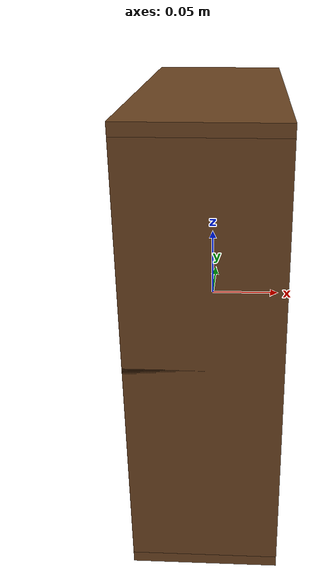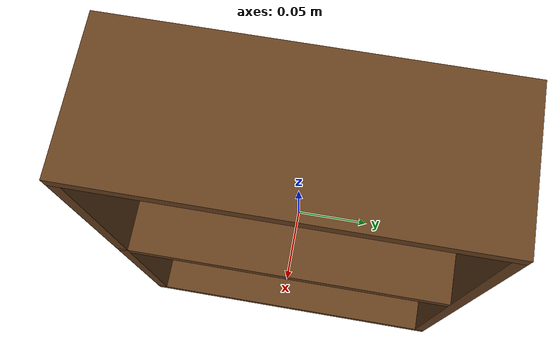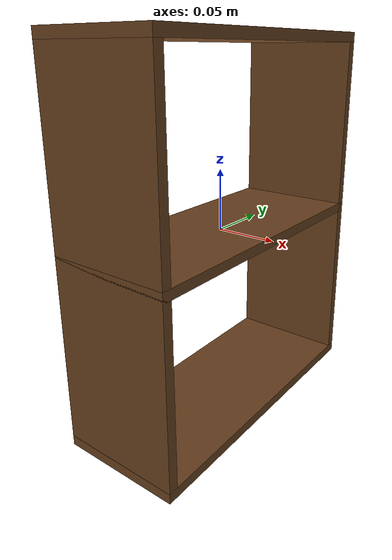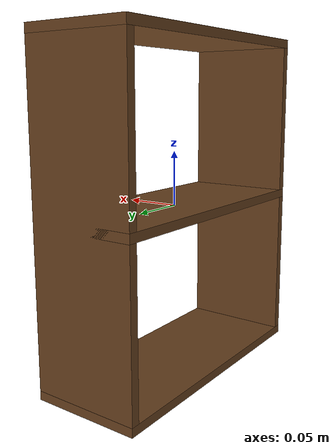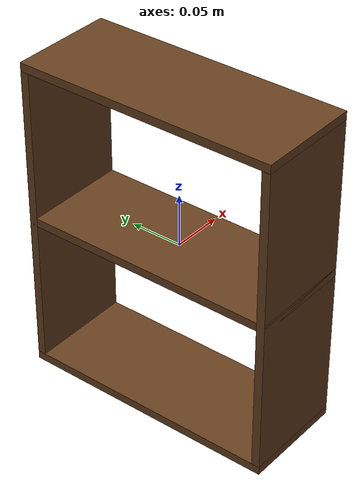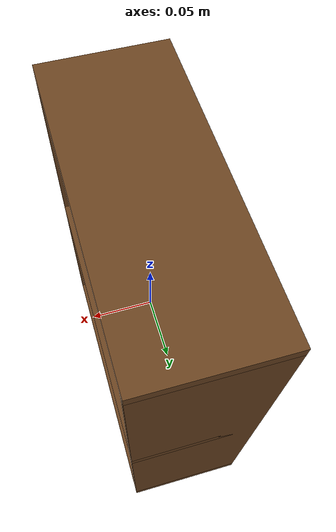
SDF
<?xml version="1.0"?>
<sdf version="1.7">
  <model name="mini_shelf_r">
    <link name="body_mini_shelf_r">
      <!-- Wall visuals -->
      <visual name="right_wall">
        <pose>0 0.121 0 0 0 0</pose> <!-- Adjusted position -->
        <geometry>
          <box>
            <size>0.10 0.008 0.2915</size>
          </box>
        </geometry>
        <material>
          <ambient>0.4 0.25 0.12 1</ambient>
          <diffuse>0.4 0.25 0.12 1</diffuse>
          <specular>0.1 0.1 0.1 1</specular>
        </material>
      </visual>
      <visual name="left_wall">
        <pose>0 -0.121 0 0 0 0</pose> <!-- Adjusted position -->
        <geometry>
          <box>
            <size>0.10 0.008 0.2915</size>
          </box>
        </geometry>
        <material>
          <ambient>0.4 0.25 0.12 1</ambient>
          <diffuse>0.4 0.25 0.12 1</diffuse>
          <specular>0.1 0.1 0.1 1</specular>
        </material>
      </visual>

      <!-- Wall collisions -->
      <collision name="right_wall">
        <pose>0 0.121 0 0 0 0</pose> <!-- Adjusted position -->
        <geometry>
          <box>
            <size>0.10 0.008 0.2915</size>
          </box>
        </geometry>
      </collision>
      <collision name="left_wall">
        <pose>0 -0.121 0 0 0 0</pose> <!-- Adjusted position -->
        <geometry>
          <box>
            <size>0.10 0.008 0.2915</size>
          </box>
        </geometry>
      </collision>
    </link>

    <link name="top_and_bottom">
      <!-- Shelf visuals -->
      <visual name="bottom">
        <pose>0 0 -0.14975 0 0 0</pose>
        <geometry>
          <box>
            <size>0.10 0.25 0.008</size> <!-- Adjusted size -->
          </box>
        </geometry>
        <material>
          <ambient>0.4 0.25 0.12 1</ambient>
          <diffuse>0.4 0.25 0.12 1</diffuse>
          <specular>0.1 0.1 0.1 1</specular>
        </material>
      </visual>
      <visual name="top">
        <pose>0 0 0.14975 0 0 0</pose>
        <geometry>
          <box>
            <size>0.10 0.25 0.008</size> <!-- Adjusted size -->
          </box>
        </geometry>
        <material>
          <ambient>0.4 0.25 0.12 1</ambient>
          <diffuse>0.4 0.25 0.12 1</diffuse>
          <specular>0.1 0.1 0.1 1</specular>
        </material>
      </visual>
      <visual name="middle_shelf">
        <pose>0 0 0 0 0 0</pose>
        <geometry>
          <box>
            <size>0.10 0.25 0.008</size> <!-- Adjusted size -->
          </box>
        </geometry>
        <material>
          <ambient>0.4 0.25 0.12 1</ambient>
          <diffuse>0.4 0.25 0.12 1</diffuse>
          <specular>0.1 0.1 0.1 1</specular>
        </material>
      </visual>

      <!-- Shelf collisions -->
      <collision name="bottom">
        <pose>0 0 -0.14975 0 0 0</pose>
        <geometry>
          <box>
            <size>0.10 0.25 0.008</size> <!-- Adjusted size -->
          </box>
        </geometry>
      </collision>
      <collision name="top">
        <pose>0 0 0.14975 0 0 0</pose>
        <geometry>
          <box>
            <size>0.10 0.25 0.008</size> <!-- Adjusted size -->
          </box>
        </geometry>
      </collision>
      <collision name="middle_shelf">
        <pose>0 0 0 0 0 0</pose>
        <geometry>
          <box>
            <size>0.10 0.25 0.008</size> <!-- Adjusted size -->
          </box>
        </geometry>
      </collision>
    </link>

    <!-- Joint between components -->
    <joint name="top_and_bottom_shelves_body" type="fixed">
      <child>top_and_bottom</child>
      <parent>body_mini_shelf_r</parent>
    </joint>
  </model>
</sdf>
